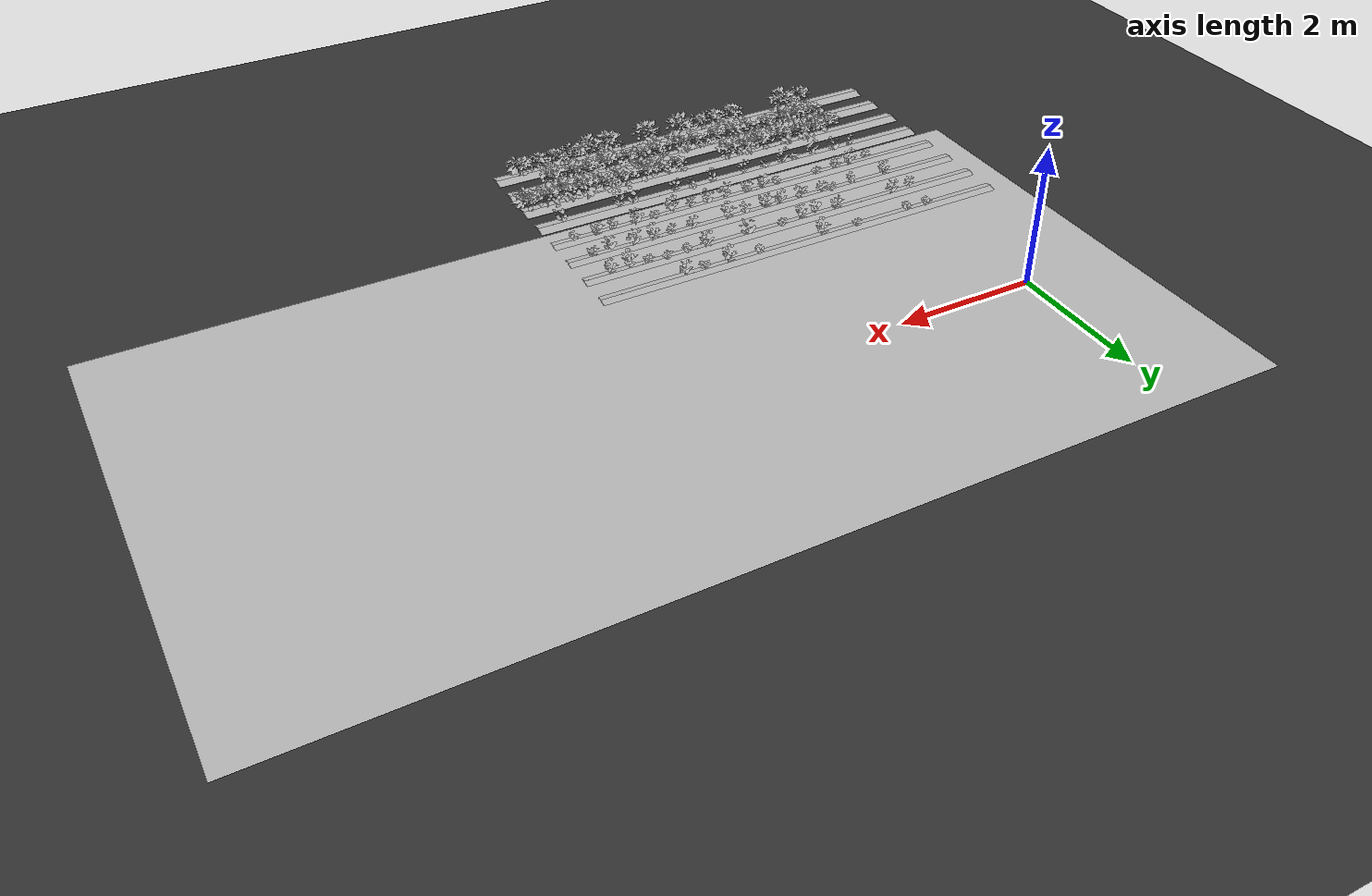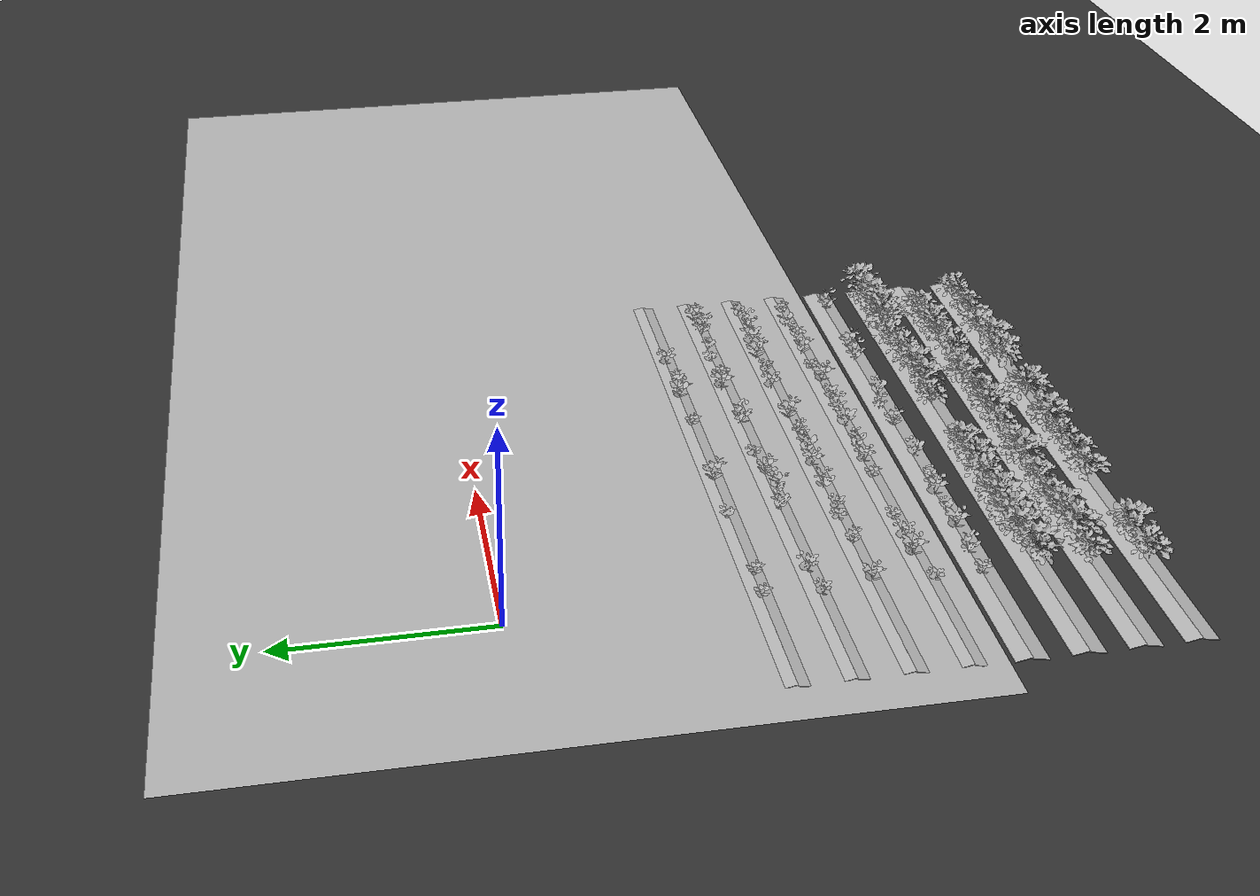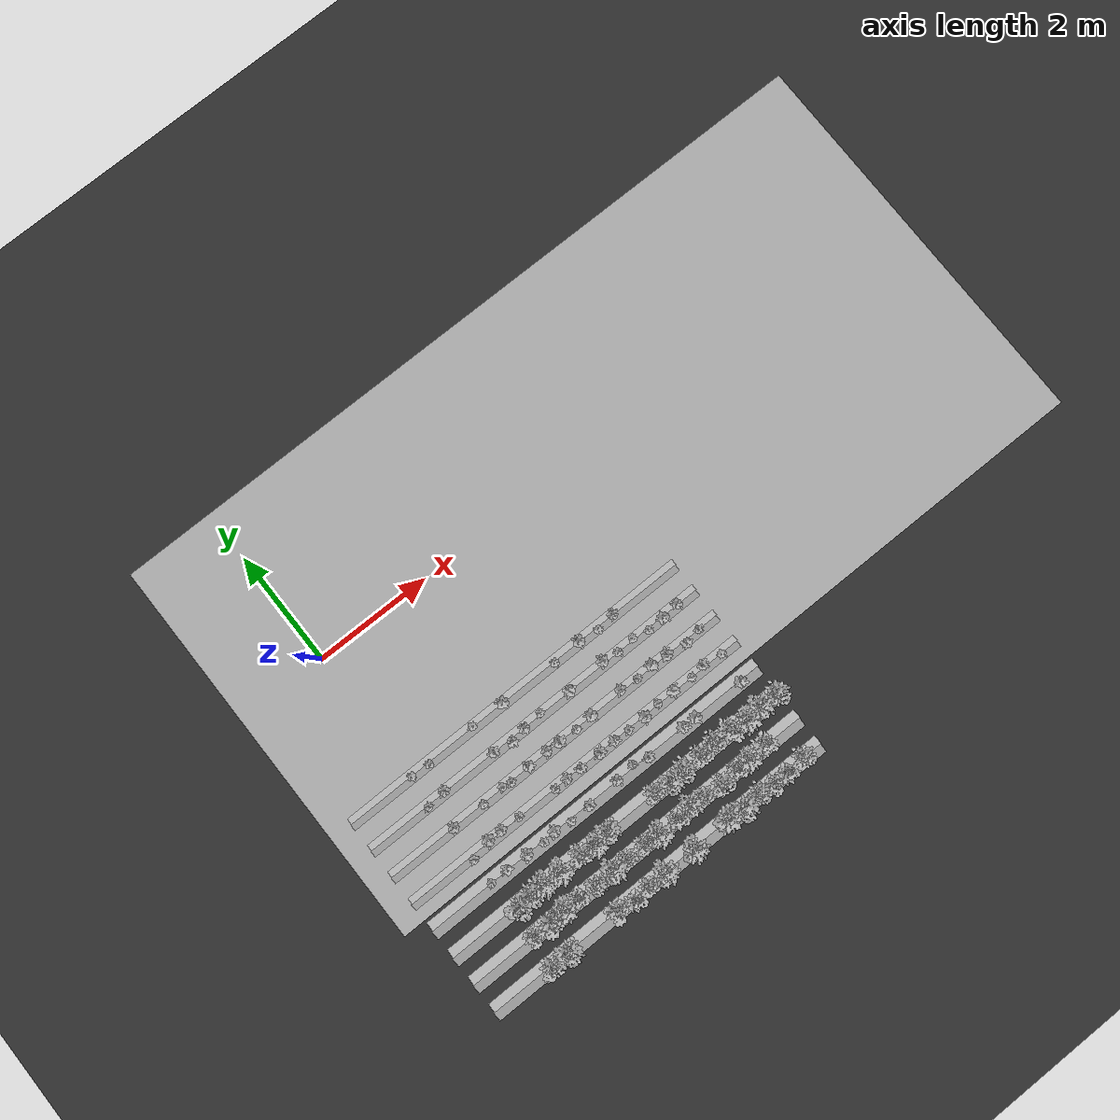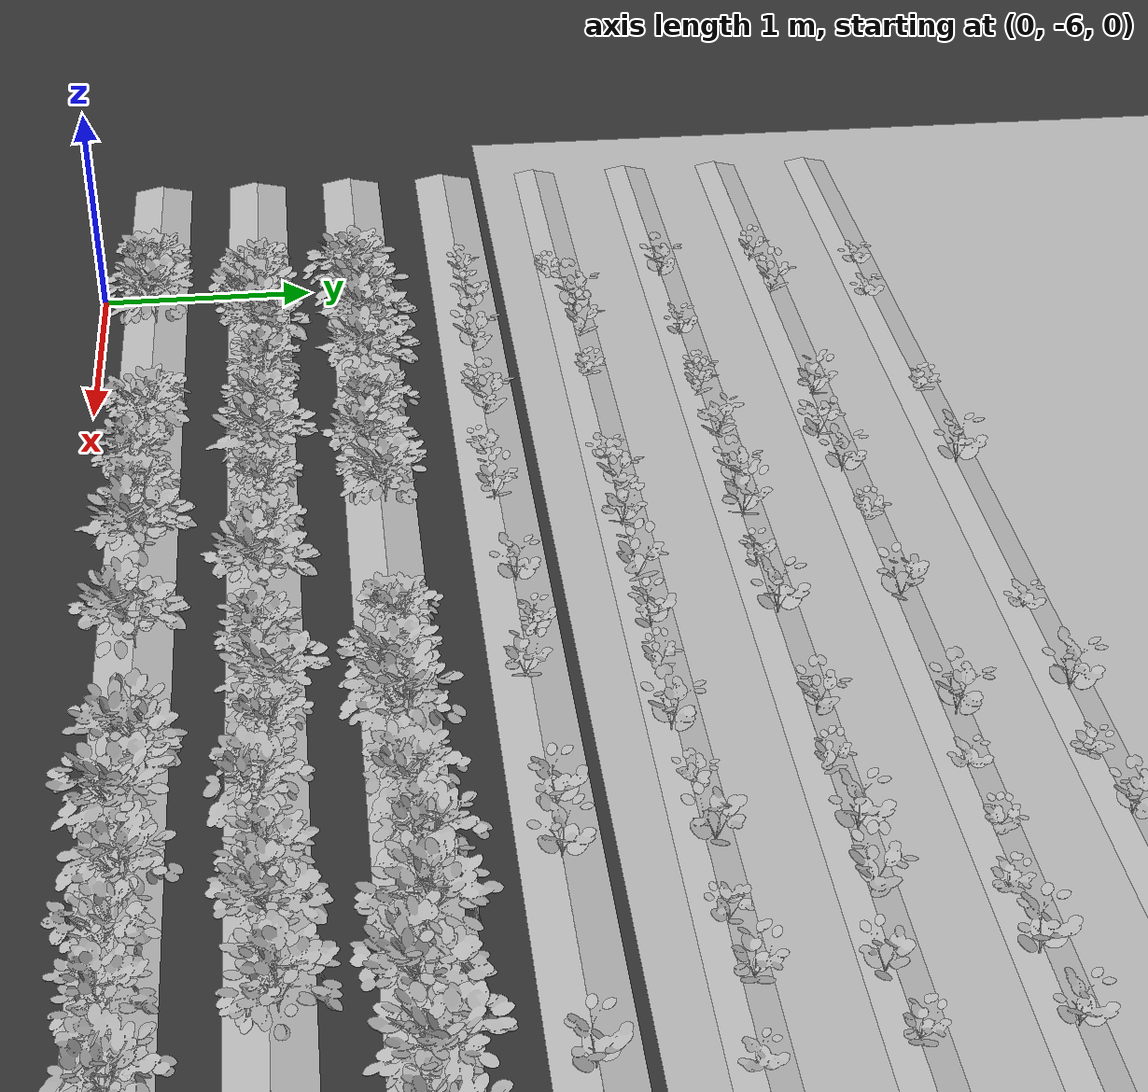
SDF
<sdf version="1.7">
 <world name="default">
  <model name="ground_plane">
   <static>1</static>
   <link name="link">
    <collision name="collision">
     <geometry><plane><normal>0 0 1</normal><size>100 100</size></plane></geometry>
     <surface>
      <contact><collide_bitmask>65535</collide_bitmask></contact>
      <friction><ode><mu>100</mu><mu2>50</mu2></ode></friction>
     </surface>
    </collision>
    <visual name="visual">
     <cast_shadows>0</cast_shadows>
     <geometry><plane><normal>0 0 1</normal><size>100 100</size></plane></geometry>
     <material>
      <ambient>0.2 0.2 0.2 1.0</ambient>
      <diffuse>0.2 0.2 0.2 1.0</diffuse>
      <specular>0.2 0.2 0.2 1.0</specular>
      <emissive>0.2 0.2 0.2 1.0</emissive>
     </material>
    </visual>
   </link>
  </model>
  <model name="ground">
   <pose>5 -0.5 0.01  3.141592654 0 0</pose>
   <static>true</static>
   <link name="body">
    <visual name="visual">
     <cast_shadows>0</cast_shadows>
     <geometry>
      <mesh><uri>file:///home/ifcosta/final_ws/src/cnn_line/worlds/models/ground.obj</uri></mesh>
     </geometry>
    </visual>
   </link>
  </model>
  <model name="plt_10000">
   <pose>-0.0155 -4.25 0.0139 0.0 0.0 -0.20527</pose>
   <static>true</static>
   <link name="body">
    <visual name="visual">
     <geometry>
      <mesh><uri>file:///home/ifcosta/final_ws/src/cnn_line/worlds/models/plant11.obj</uri></mesh>
     </geometry>
    </visual>
   </link>
  </model>
  <model name="plt_10001">
   <pose>0.29 -4.23 0.0123 0.0 0.0 1.6509</pose>
   <static>true</static>
   <link name="body">
    <visual name="visual">
     <geometry>
      <mesh><uri>file:///home/ifcosta/final_ws/src/cnn_line/worlds/models/plant12.obj</uri></mesh>
     </geometry>
    </visual>
   </link>
  </model>
  <model name="plt_10002">
   <pose>0.662 -4.25 0.0135 0.0 0.0 -0.071589</pose>
   <static>true</static>
   <link name="body">
    <visual name="visual">
     <geometry>
      <mesh><uri>file:///home/ifcosta/final_ws/src/cnn_line/worlds/models/plant13.obj</uri></mesh>
     </geometry>
    </visual>
   </link>
  </model>
  <model name="plt_10003">
   <pose>0.961 -4.27 0.0196 0.0 0.0 -1.2805</pose>
   <static>true</static>
   <link name="body">
    <visual name="visual">
     <geometry>
      <mesh><uri>file:///home/ifcosta/final_ws/src/cnn_line/worlds/models/plant10.obj</uri></mesh>
     </geometry>
    </visual>
   </link>
  </model>
  <model name="plt_10004">
   <pose>1.19 -4.24 0.012 0.0 0.0 -0.21423</pose>
   <static>true</static>
   <link name="body">
    <visual name="visual">
     <geometry>
      <mesh><uri>file:///home/ifcosta/final_ws/src/cnn_line/worlds/models/plant13.obj</uri></mesh>
     </geometry>
    </visual>
   </link>
  </model>
  <model name="plt_10005">
   <pose>1.48 -4.28 0.0138 0.0 0.0 2.1689</pose>
   <static>true</static>
   <link name="body">
    <visual name="visual">
     <geometry>
      <mesh><uri>file:///home/ifcosta/final_ws/src/cnn_line/worlds/models/plant10.obj</uri></mesh>
     </geometry>
    </visual>
   </link>
  </model>
  <model name="plt_10006">
   <pose>1.84 -4.27 0.0161 0.0 0.0 -0.95736</pose>
   <static>true</static>
   <link name="body">
    <visual name="visual">
     <geometry>
      <mesh><uri>file:///home/ifcosta/final_ws/src/cnn_line/worlds/models/plant12.obj</uri></mesh>
     </geometry>
    </visual>
   </link>
  </model>
  <model name="plt_10008">
   <pose>2.4 -4.24 0.0127 0.0 0.0 0.71833</pose>
   <static>true</static>
   <link name="body">
    <visual name="visual">
     <geometry>
      <mesh><uri>file:///home/ifcosta/final_ws/src/cnn_line/worlds/models/plant12.obj</uri></mesh>
     </geometry>
    </visual>
   </link>
  </model>
  <model name="plt_10009">
   <pose>2.73 -4.2 0.0151 0.0 0.0 1.341</pose>
   <static>true</static>
   <link name="body">
    <visual name="visual">
     <geometry>
      <mesh><uri>file:///home/ifcosta/final_ws/src/cnn_line/worlds/models/plant11.obj</uri></mesh>
     </geometry>
    </visual>
   </link>
  </model>
  <model name="plt_10010">
   <pose>2.98 -4.27 0.0139 0.0 0.0 -1.2602</pose>
   <static>true</static>
   <link name="body">
    <visual name="visual">
     <geometry>
      <mesh><uri>file:///home/ifcosta/final_ws/src/cnn_line/worlds/models/plant12.obj</uri></mesh>
     </geometry>
    </visual>
   </link>
  </model>
  <model name="plt_10012">
   <pose>3.68 -4.24 0.0168 0.0 0.0 1.4368</pose>
   <static>true</static>
   <link name="body">
    <visual name="visual">
     <geometry>
      <mesh><uri>file:///home/ifcosta/final_ws/src/cnn_line/worlds/models/plant13.obj</uri></mesh>
     </geometry>
    </visual>
   </link>
  </model>
  <model name="plt_10013">
   <pose>3.91 -4.25 0.0149 0.0 0.0 0.73426</pose>
   <static>true</static>
   <link name="body">
    <visual name="visual">
     <geometry>
      <mesh><uri>file:///home/ifcosta/final_ws/src/cnn_line/worlds/models/plant13.obj</uri></mesh>
     </geometry>
    </visual>
   </link>
  </model>
  <model name="plt_10016">
   <pose>4.79 -4.26 0.0151 0.0 0.0 1.4062</pose>
   <static>true</static>
   <link name="body">
    <visual name="visual">
     <geometry>
      <mesh><uri>file:///home/ifcosta/final_ws/src/cnn_line/worlds/models/plant13.obj</uri></mesh>
     </geometry>
    </visual>
   </link>
  </model>
  <model name="slope_634">
   <pose>2.0 -4.25 -0.005 0.0 0.0 0.0</pose>
   <static>true</static>
   <link name="body">
    <visual name="visual">
     <geometry>
      <mesh><uri>file:///home/ifcosta/final_ws/src/cnn_line/worlds/models/slope.obj</uri></mesh>
     </geometry>
    </visual>
   </link>
  </model>
  <model name="slope_734">
   <pose>2.0 -4.25 -0.005 0.0 0.0 3.1416</pose>
   <static>true</static>
   <link name="body">
    <visual name="visual">
     <geometry>
      <mesh><uri>file:///home/ifcosta/final_ws/src/cnn_line/worlds/models/slope.obj</uri></mesh>
     </geometry>
    </visual>
   </link>
  </model>
  <model name="plt_10034">
   <pose>-0.0142 -3.82 0.0136 0.0 0.0 -0.42217</pose>
   <static>true</static>
   <link name="body">
    <visual name="visual">
     <geometry>
      <mesh><uri>file:///home/ifcosta/final_ws/src/cnn_line/worlds/models/plant10.obj</uri></mesh>
     </geometry>
    </visual>
   </link>
  </model>
  <model name="plt_10035">
   <pose>0.339 -3.73 0.0136 0.0 0.0 0.068219</pose>
   <static>true</static>
   <link name="body">
    <visual name="visual">
     <geometry>
      <mesh><uri>file:///home/ifcosta/final_ws/src/cnn_line/worlds/models/plant13.obj</uri></mesh>
     </geometry>
    </visual>
   </link>
  </model>
  <model name="plt_10036">
   <pose>0.577 -3.73 0.0141 0.0 0.0 -0.56082</pose>
   <static>true</static>
   <link name="body">
    <visual name="visual">
     <geometry>
      <mesh><uri>file:///home/ifcosta/final_ws/src/cnn_line/worlds/models/plant12.obj</uri></mesh>
     </geometry>
    </visual>
   </link>
  </model>
  <model name="plt_10037">
   <pose>0.902 -3.74 0.0154 0.0 0.0 -0.92033</pose>
   <static>true</static>
   <link name="body">
    <visual name="visual">
     <geometry>
      <mesh><uri>file:///home/ifcosta/final_ws/src/cnn_line/worlds/models/plant10.obj</uri></mesh>
     </geometry>
    </visual>
   </link>
  </model>
  <model name="plt_10039">
   <pose>1.59 -3.76 0.0153 0.0 0.0 0.54564</pose>
   <static>true</static>
   <link name="body">
    <visual name="visual">
     <geometry>
      <mesh><uri>file:///home/ifcosta/final_ws/src/cnn_line/worlds/models/plant10.obj</uri></mesh>
     </geometry>
    </visual>
   </link>
  </model>
  <model name="plt_10040">
   <pose>1.82 -3.75 0.0142 0.0 0.0 -0.19202</pose>
   <static>true</static>
   <link name="body">
    <visual name="visual">
     <geometry>
      <mesh><uri>file:///home/ifcosta/final_ws/src/cnn_line/worlds/models/plant12.obj</uri></mesh>
     </geometry>
    </visual>
   </link>
  </model>
  <model name="plt_10041">
   <pose>2.08 -3.76 0.0162 0.0 0.0 -1.6055</pose>
   <static>true</static>
   <link name="body">
    <visual name="visual">
     <geometry>
      <mesh><uri>file:///home/ifcosta/final_ws/src/cnn_line/worlds/models/plant12.obj</uri></mesh>
     </geometry>
    </visual>
   </link>
  </model>
  <model name="plt_10042">
   <pose>2.45 -3.76 0.0149 0.0 0.0 -0.82227</pose>
   <static>true</static>
   <link name="body">
    <visual name="visual">
     <geometry>
      <mesh><uri>file:///home/ifcosta/final_ws/src/cnn_line/worlds/models/plant13.obj</uri></mesh>
     </geometry>
    </visual>
   </link>
  </model>
  <model name="plt_10043">
   <pose>2.74 -3.75 0.0141 0.0 0.0 1.4664</pose>
   <static>true</static>
   <link name="body">
    <visual name="visual">
     <geometry>
      <mesh><uri>file:///home/ifcosta/final_ws/src/cnn_line/worlds/models/plant12.obj</uri></mesh>
     </geometry>
    </visual>
   </link>
  </model>
  <model name="plt_10044">
   <pose>3.0 -3.77 0.0157 0.0 0.0 -0.57477</pose>
   <static>true</static>
   <link name="body">
    <visual name="visual">
     <geometry>
      <mesh><uri>file:///home/ifcosta/final_ws/src/cnn_line/worlds/models/plant11.obj</uri></mesh>
     </geometry>
    </visual>
   </link>
  </model>
  <model name="plt_10045">
   <pose>3.32 -3.77 0.0137 0.0 0.0 0.14079</pose>
   <static>true</static>
   <link name="body">
    <visual name="visual">
     <geometry>
      <mesh><uri>file:///home/ifcosta/final_ws/src/cnn_line/worlds/models/plant13.obj</uri></mesh>
     </geometry>
    </visual>
   </link>
  </model>
  <model name="plt_10046">
   <pose>3.6 -3.74 0.0158 0.0 0.0 0.02985</pose>
   <static>true</static>
   <link name="body">
    <visual name="visual">
     <geometry>
      <mesh><uri>file:///home/ifcosta/final_ws/src/cnn_line/worlds/models/plant10.obj</uri></mesh>
     </geometry>
    </visual>
   </link>
  </model>
  <model name="plt_10047">
   <pose>3.9 -3.72 0.0159 0.0 0.0 2.5981</pose>
   <static>true</static>
   <link name="body">
    <visual name="visual">
     <geometry>
      <mesh><uri>file:///home/ifcosta/final_ws/src/cnn_line/worlds/models/plant13.obj</uri></mesh>
     </geometry>
    </visual>
   </link>
  </model>
  <model name="plt_10048">
   <pose>4.25 -3.74 0.0164 0.0 0.0 -3.3697</pose>
   <static>true</static>
   <link name="body">
    <visual name="visual">
     <geometry>
      <mesh><uri>file:///home/ifcosta/final_ws/src/cnn_line/worlds/models/plant11.obj</uri></mesh>
     </geometry>
    </visual>
   </link>
  </model>
  <model name="plt_10049">
   <pose>4.5 -3.71 0.014 0.0 0.0 -1.2945</pose>
   <static>true</static>
   <link name="body">
    <visual name="visual">
     <geometry>
      <mesh><uri>file:///home/ifcosta/final_ws/src/cnn_line/worlds/models/plant12.obj</uri></mesh>
     </geometry>
    </visual>
   </link>
  </model>
  <model name="plt_10050">
   <pose>4.84 -3.76 0.0147 0.0 0.0 1.0075</pose>
   <static>true</static>
   <link name="body">
    <visual name="visual">
     <geometry>
      <mesh><uri>file:///home/ifcosta/final_ws/src/cnn_line/worlds/models/plant10.obj</uri></mesh>
     </geometry>
    </visual>
   </link>
  </model>
  <model name="slope_668">
   <pose>2.0 -3.75 -0.005 0.0 0.0 0.0</pose>
   <static>true</static>
   <link name="body">
    <visual name="visual">
     <geometry>
      <mesh><uri>file:///home/ifcosta/final_ws/src/cnn_line/worlds/models/slope.obj</uri></mesh>
     </geometry>
    </visual>
   </link>
  </model>
  <model name="slope_768">
   <pose>2.0 -3.75 -0.005 0.0 0.0 3.1416</pose>
   <static>true</static>
   <link name="body">
    <visual name="visual">
     <geometry>
      <mesh><uri>file:///home/ifcosta/final_ws/src/cnn_line/worlds/models/slope.obj</uri></mesh>
     </geometry>
    </visual>
   </link>
  </model>
  <model name="plt_10068">
   <pose>0.0498 -3.26 0.0142 0.0 0.0 0.10917</pose>
   <static>true</static>
   <link name="body">
    <visual name="visual">
     <geometry>
      <mesh><uri>file:///home/ifcosta/final_ws/src/cnn_line/worlds/models/plant12.obj</uri></mesh>
     </geometry>
    </visual>
   </link>
  </model>
  <model name="plt_10070">
   <pose>0.612 -3.26 0.0137 0.0 0.0 0.96108</pose>
   <static>true</static>
   <link name="body">
    <visual name="visual">
     <geometry>
      <mesh><uri>file:///home/ifcosta/final_ws/src/cnn_line/worlds/models/plant11.obj</uri></mesh>
     </geometry>
    </visual>
   </link>
  </model>
  <model name="plt_10071">
   <pose>0.981 -3.24 0.0156 0.0 0.0 -0.22432</pose>
   <static>true</static>
   <link name="body">
    <visual name="visual">
     <geometry>
      <mesh><uri>file:///home/ifcosta/final_ws/src/cnn_line/worlds/models/plant10.obj</uri></mesh>
     </geometry>
    </visual>
   </link>
  </model>
  <model name="plt_10072">
   <pose>1.13 -3.27 0.0126 0.0 0.0 -0.60124</pose>
   <static>true</static>
   <link name="body">
    <visual name="visual">
     <geometry>
      <mesh><uri>file:///home/ifcosta/final_ws/src/cnn_line/worlds/models/plant11.obj</uri></mesh>
     </geometry>
    </visual>
   </link>
  </model>
  <model name="plt_10073">
   <pose>1.48 -3.24 0.0167 0.0 0.0 -2.2975</pose>
   <static>true</static>
   <link name="body">
    <visual name="visual">
     <geometry>
      <mesh><uri>file:///home/ifcosta/final_ws/src/cnn_line/worlds/models/plant12.obj</uri></mesh>
     </geometry>
    </visual>
   </link>
  </model>
  <model name="plt_10074">
   <pose>1.84 -3.24 0.0138 0.0 0.0 -0.044385</pose>
   <static>true</static>
   <link name="body">
    <visual name="visual">
     <geometry>
      <mesh><uri>file:///home/ifcosta/final_ws/src/cnn_line/worlds/models/plant12.obj</uri></mesh>
     </geometry>
    </visual>
   </link>
  </model>
  <model name="plt_10075">
   <pose>2.07 -3.25 0.0153 0.0 0.0 -1.4695</pose>
   <static>true</static>
   <link name="body">
    <visual name="visual">
     <geometry>
      <mesh><uri>file:///home/ifcosta/final_ws/src/cnn_line/worlds/models/plant13.obj</uri></mesh>
     </geometry>
    </visual>
   </link>
  </model>
  <model name="plt_10076">
   <pose>2.4 -3.26 0.0146 0.0 0.0 1.5459</pose>
   <static>true</static>
   <link name="body">
    <visual name="visual">
     <geometry>
      <mesh><uri>file:///home/ifcosta/final_ws/src/cnn_line/worlds/models/plant11.obj</uri></mesh>
     </geometry>
    </visual>
   </link>
  </model>
  <model name="plt_10077">
   <pose>2.7 -3.24 0.0145 0.0 0.0 0.80367</pose>
   <static>true</static>
   <link name="body">
    <visual name="visual">
     <geometry>
      <mesh><uri>file:///home/ifcosta/final_ws/src/cnn_line/worlds/models/plant13.obj</uri></mesh>
     </geometry>
    </visual>
   </link>
  </model>
  <model name="plt_10079">
   <pose>3.28 -3.22 0.0128 0.0 0.0 -0.28753</pose>
   <static>true</static>
   <link name="body">
    <visual name="visual">
     <geometry>
      <mesh><uri>file:///home/ifcosta/final_ws/src/cnn_line/worlds/models/plant12.obj</uri></mesh>
     </geometry>
    </visual>
   </link>
  </model>
  <model name="plt_10080">
   <pose>3.59 -3.25 0.0123 0.0 0.0 -0.81156</pose>
   <static>true</static>
   <link name="body">
    <visual name="visual">
     <geometry>
      <mesh><uri>file:///home/ifcosta/final_ws/src/cnn_line/worlds/models/plant11.obj</uri></mesh>
     </geometry>
    </visual>
   </link>
  </model>
  <model name="plt_10081">
   <pose>3.89 -3.22 0.0166 0.0 0.0 0.79821</pose>
   <static>true</static>
   <link name="body">
    <visual name="visual">
     <geometry>
      <mesh><uri>file:///home/ifcosta/final_ws/src/cnn_line/worlds/models/plant13.obj</uri></mesh>
     </geometry>
    </visual>
   </link>
  </model>
  <model name="plt_10082">
   <pose>4.17 -3.24 0.0134 0.0 0.0 -0.51475</pose>
   <static>true</static>
   <link name="body">
    <visual name="visual">
     <geometry>
      <mesh><uri>file:///home/ifcosta/final_ws/src/cnn_line/worlds/models/plant13.obj</uri></mesh>
     </geometry>
    </visual>
   </link>
  </model>
  <model name="plt_10083">
   <pose>4.52 -3.29 0.014 0.0 0.0 2.0841</pose>
   <static>true</static>
   <link name="body">
    <visual name="visual">
     <geometry>
      <mesh><uri>file:///home/ifcosta/final_ws/src/cnn_line/worlds/models/plant12.obj</uri></mesh>
     </geometry>
    </visual>
   </link>
  </model>
  <model name="plt_10084">
   <pose>4.79 -3.25 0.0162 0.0 0.0 -1.3864</pose>
   <static>true</static>
   <link name="body">
    <visual name="visual">
     <geometry>
      <mesh><uri>file:///home/ifcosta/final_ws/src/cnn_line/worlds/models/plant11.obj</uri></mesh>
     </geometry>
    </visual>
   </link>
  </model>
  <model name="slope_702">
   <pose>2.0 -3.25 -0.005 0.0 0.0 0.0</pose>
   <static>true</static>
   <link name="body">
    <visual name="visual">
     <geometry>
      <mesh><uri>file:///home/ifcosta/final_ws/src/cnn_line/worlds/models/slope.obj</uri></mesh>
     </geometry>
    </visual>
   </link>
  </model>
  <model name="slope_802">
   <pose>2.0 -3.25 -0.005 0.0 0.0 3.1416</pose>
   <static>true</static>
   <link name="body">
    <visual name="visual">
     <geometry>
      <mesh><uri>file:///home/ifcosta/final_ws/src/cnn_line/worlds/models/slope.obj</uri></mesh>
     </geometry>
    </visual>
   </link>
  </model>
  <model name="plt_10102">
   <pose>-0.0664 -2.78 0.0167 0.0 0.0 -0.61444</pose>
   <static>true</static>
   <link name="body">
    <visual name="visual">
     <geometry>
      <mesh><uri>file:///home/ifcosta/final_ws/src/cnn_line/worlds/models/plant11.obj</uri></mesh>
     </geometry>
    </visual>
   </link>
  </model>
  <model name="plt_20102">
   <pose>-0.0664 -5.78 0.0167 0.0 0.0 0.69215</pose>
   <static>true</static>
   <link name="body">
    <visual name="visual">
     <geometry>
      <mesh><uri>file:///home/ifcosta/final_ws/src/cnn_line/worlds/models/plant21.obj</uri></mesh>
     </geometry>
    </visual>
   </link>
  </model>
  <model name="plt_10103">
   <pose>0.262 -2.74 0.0141 0.0 0.0 -0.56469</pose>
   <static>true</static>
   <link name="body">
    <visual name="visual">
     <geometry>
      <mesh><uri>file:///home/ifcosta/final_ws/src/cnn_line/worlds/models/plant12.obj</uri></mesh>
     </geometry>
    </visual>
   </link>
  </model>
  <model name="plt_20103">
   <pose>0.262 -5.74 0.0141 0.0 0.0 0.14658</pose>
   <static>true</static>
   <link name="body">
    <visual name="visual">
     <geometry>
      <mesh><uri>file:///home/ifcosta/final_ws/src/cnn_line/worlds/models/plant22.obj</uri></mesh>
     </geometry>
    </visual>
   </link>
  </model>
  <model name="plt_10106">
   <pose>1.2 -2.75 0.0172 0.0 0.0 -1.3904</pose>
   <static>true</static>
   <link name="body">
    <visual name="visual">
     <geometry>
      <mesh><uri>file:///home/ifcosta/final_ws/src/cnn_line/worlds/models/plant12.obj</uri></mesh>
     </geometry>
    </visual>
   </link>
  </model>
  <model name="plt_20106">
   <pose>1.2 -5.75 0.0172 0.0 0.0 1.2882</pose>
   <static>true</static>
   <link name="body">
    <visual name="visual">
     <geometry>
      <mesh><uri>file:///home/ifcosta/final_ws/src/cnn_line/worlds/models/plant21.obj</uri></mesh>
     </geometry>
    </visual>
   </link>
  </model>
  <model name="plt_10107">
   <pose>1.52 -2.8 0.0153 0.0 0.0 3.1472</pose>
   <static>true</static>
   <link name="body">
    <visual name="visual">
     <geometry>
      <mesh><uri>file:///home/ifcosta/final_ws/src/cnn_line/worlds/models/plant12.obj</uri></mesh>
     </geometry>
    </visual>
   </link>
  </model>
  <model name="plt_20107">
   <pose>1.52 -5.8 0.0153 0.0 0.0 1.6984</pose>
   <static>true</static>
   <link name="body">
    <visual name="visual">
     <geometry>
      <mesh><uri>file:///home/ifcosta/final_ws/src/cnn_line/worlds/models/plant20.obj</uri></mesh>
     </geometry>
    </visual>
   </link>
  </model>
  <model name="plt_10108">
   <pose>1.79 -2.76 0.0176 0.0 0.0 0.48622</pose>
   <static>true</static>
   <link name="body">
    <visual name="visual">
     <geometry>
      <mesh><uri>file:///home/ifcosta/final_ws/src/cnn_line/worlds/models/plant12.obj</uri></mesh>
     </geometry>
    </visual>
   </link>
  </model>
  <model name="plt_20108">
   <pose>1.79 -5.76 0.0176 0.0 0.0 -0.096183</pose>
   <static>true</static>
   <link name="body">
    <visual name="visual">
     <geometry>
      <mesh><uri>file:///home/ifcosta/final_ws/src/cnn_line/worlds/models/plant20.obj</uri></mesh>
     </geometry>
    </visual>
   </link>
  </model>
  <model name="plt_10109">
   <pose>2.11 -2.73 0.0164 0.0 0.0 -0.62056</pose>
   <static>true</static>
   <link name="body">
    <visual name="visual">
     <geometry>
      <mesh><uri>file:///home/ifcosta/final_ws/src/cnn_line/worlds/models/plant10.obj</uri></mesh>
     </geometry>
    </visual>
   </link>
  </model>
  <model name="plt_20109">
   <pose>2.11 -5.73 0.0164 0.0 0.0 -0.61001</pose>
   <static>true</static>
   <link name="body">
    <visual name="visual">
     <geometry>
      <mesh><uri>file:///home/ifcosta/final_ws/src/cnn_line/worlds/models/plant22.obj</uri></mesh>
     </geometry>
    </visual>
   </link>
  </model>
  <model name="plt_10111">
   <pose>2.67 -2.74 0.014 0.0 0.0 2.0661</pose>
   <static>true</static>
   <link name="body">
    <visual name="visual">
     <geometry>
      <mesh><uri>file:///home/ifcosta/final_ws/src/cnn_line/worlds/models/plant13.obj</uri></mesh>
     </geometry>
    </visual>
   </link>
  </model>
  <model name="plt_20111">
   <pose>2.67 -5.74 0.014 0.0 0.0 -0.96624</pose>
   <static>true</static>
   <link name="body">
    <visual name="visual">
     <geometry>
      <mesh><uri>file:///home/ifcosta/final_ws/src/cnn_line/worlds/models/plant22.obj</uri></mesh>
     </geometry>
    </visual>
   </link>
  </model>
  <model name="plt_10113">
   <pose>3.34 -2.71 0.0191 0.0 0.0 -0.024275</pose>
   <static>true</static>
   <link name="body">
    <visual name="visual">
     <geometry>
      <mesh><uri>file:///home/ifcosta/final_ws/src/cnn_line/worlds/models/plant13.obj</uri></mesh>
     </geometry>
    </visual>
   </link>
  </model>
  <model name="plt_20113">
   <pose>3.34 -5.71 0.0191 0.0 0.0 -1.4681</pose>
   <static>true</static>
   <link name="body">
    <visual name="visual">
     <geometry>
      <mesh><uri>file:///home/ifcosta/final_ws/src/cnn_line/worlds/models/plant22.obj</uri></mesh>
     </geometry>
    </visual>
   </link>
  </model>
  <model name="plt_10114">
   <pose>3.62 -2.75 0.0179 0.0 0.0 0.75941</pose>
   <static>true</static>
   <link name="body">
    <visual name="visual">
     <geometry>
      <mesh><uri>file:///home/ifcosta/final_ws/src/cnn_line/worlds/models/plant10.obj</uri></mesh>
     </geometry>
    </visual>
   </link>
  </model>
  <model name="plt_20114">
   <pose>3.62 -5.75 0.0179 0.0 0.0 0.054323</pose>
   <static>true</static>
   <link name="body">
    <visual name="visual">
     <geometry>
      <mesh><uri>file:///home/ifcosta/final_ws/src/cnn_line/worlds/models/plant22.obj</uri></mesh>
     </geometry>
    </visual>
   </link>
  </model>
  <model name="plt_10115">
   <pose>3.92 -2.73 0.0164 0.0 0.0 -0.74272</pose>
   <static>true</static>
   <link name="body">
    <visual name="visual">
     <geometry>
      <mesh><uri>file:///home/ifcosta/final_ws/src/cnn_line/worlds/models/plant10.obj</uri></mesh>
     </geometry>
    </visual>
   </link>
  </model>
  <model name="plt_20115">
   <pose>3.92 -5.73 0.0164 0.0 0.0 0.088671</pose>
   <static>true</static>
   <link name="body">
    <visual name="visual">
     <geometry>
      <mesh><uri>file:///home/ifcosta/final_ws/src/cnn_line/worlds/models/plant21.obj</uri></mesh>
     </geometry>
    </visual>
   </link>
  </model>
  <model name="plt_10116">
   <pose>4.19 -2.78 0.0137 0.0 0.0 -1.3944</pose>
   <static>true</static>
   <link name="body">
    <visual name="visual">
     <geometry>
      <mesh><uri>file:///home/ifcosta/final_ws/src/cnn_line/worlds/models/plant10.obj</uri></mesh>
     </geometry>
    </visual>
   </link>
  </model>
  <model name="plt_20116">
   <pose>4.19 -5.78 0.0137 0.0 0.0 0.858</pose>
   <static>true</static>
   <link name="body">
    <visual name="visual">
     <geometry>
      <mesh><uri>file:///home/ifcosta/final_ws/src/cnn_line/worlds/models/plant20.obj</uri></mesh>
     </geometry>
    </visual>
   </link>
  </model>
  <model name="plt_10117">
   <pose>4.48 -2.77 0.0169 0.0 0.0 1.0625</pose>
   <static>true</static>
   <link name="body">
    <visual name="visual">
     <geometry>
      <mesh><uri>file:///home/ifcosta/final_ws/src/cnn_line/worlds/models/plant13.obj</uri></mesh>
     </geometry>
    </visual>
   </link>
  </model>
  <model name="plt_20117">
   <pose>4.48 -5.77 0.0169 0.0 0.0 1.9713</pose>
   <static>true</static>
   <link name="body">
    <visual name="visual">
     <geometry>
      <mesh><uri>file:///home/ifcosta/final_ws/src/cnn_line/worlds/models/plant20.obj</uri></mesh>
     </geometry>
    </visual>
   </link>
  </model>
  <model name="plt_10118">
   <pose>4.78 -2.74 0.0152 0.0 0.0 0.69668</pose>
   <static>true</static>
   <link name="body">
    <visual name="visual">
     <geometry>
      <mesh><uri>file:///home/ifcosta/final_ws/src/cnn_line/worlds/models/plant12.obj</uri></mesh>
     </geometry>
    </visual>
   </link>
  </model>
  <model name="plt_20118">
   <pose>4.78 -5.74 0.0152 0.0 0.0 0.5259</pose>
   <static>true</static>
   <link name="body">
    <visual name="visual">
     <geometry>
      <mesh><uri>file:///home/ifcosta/final_ws/src/cnn_line/worlds/models/plant21.obj</uri></mesh>
     </geometry>
    </visual>
   </link>
  </model>
  <model name="slope_736">
   <pose>2.0 -2.75 -0.005 0.0 0.0 0.0</pose>
   <static>true</static>
   <link name="body">
    <visual name="visual">
     <geometry>
      <mesh><uri>file:///home/ifcosta/final_ws/src/cnn_line/worlds/models/slope.obj</uri></mesh>
     </geometry>
    </visual>
   </link>
  </model>
  <model name="slope_836">
   <pose>2.0 -2.75 -0.005 0.0 0.0 3.1416</pose>
   <static>true</static>
   <link name="body">
    <visual name="visual">
     <geometry>
      <mesh><uri>file:///home/ifcosta/final_ws/src/cnn_line/worlds/models/slope.obj</uri></mesh>
     </geometry>
    </visual>
   </link>
  </model>
  <model name="slope_1136">
   <pose>2.0 -5.75 -0.005 0.0 0.0 0.0</pose>
   <static>true</static>
   <link name="body">
    <visual name="visual">
     <geometry>
      <mesh><uri>file:///home/ifcosta/final_ws/src/cnn_line/worlds/models/slope.obj</uri></mesh>
     </geometry>
    </visual>
   </link>
  </model>
  <model name="slope_1236">
   <pose>2.0 -5.75 -0.005 0.0 0.0 3.1416</pose>
   <static>true</static>
   <link name="body">
    <visual name="visual">
     <geometry>
      <mesh><uri>file:///home/ifcosta/final_ws/src/cnn_line/worlds/models/slope.obj</uri></mesh>
     </geometry>
    </visual>
   </link>
  </model>
  <model name="plt_10136">
   <pose>0.0107 -2.26 0.0145 0.0 0.0 0.56906</pose>
   <static>true</static>
   <link name="body">
    <visual name="visual">
     <geometry>
      <mesh><uri>file:///home/ifcosta/final_ws/src/cnn_line/worlds/models/plant10.obj</uri></mesh>
     </geometry>
    </visual>
   </link>
  </model>
  <model name="plt_20136">
   <pose>0.0107 -5.26 0.0145 0.0 0.0 0.55947</pose>
   <static>true</static>
   <link name="body">
    <visual name="visual">
     <geometry>
      <mesh><uri>file:///home/ifcosta/final_ws/src/cnn_line/worlds/models/plant20.obj</uri></mesh>
     </geometry>
    </visual>
   </link>
  </model>
  <model name="plt_10137">
   <pose>0.332 -2.28 0.0125 0.0 0.0 0.71131</pose>
   <static>true</static>
   <link name="body">
    <visual name="visual">
     <geometry>
      <mesh><uri>file:///home/ifcosta/final_ws/src/cnn_line/worlds/models/plant10.obj</uri></mesh>
     </geometry>
    </visual>
   </link>
  </model>
  <model name="plt_20137">
   <pose>0.332 -5.28 0.0125 0.0 0.0 1.6973</pose>
   <static>true</static>
   <link name="body">
    <visual name="visual">
     <geometry>
      <mesh><uri>file:///home/ifcosta/final_ws/src/cnn_line/worlds/models/plant22.obj</uri></mesh>
     </geometry>
    </visual>
   </link>
  </model>
  <model name="plt_20138">
   <pose>0.586 -5.21 0.0165 0.0 0.0 -1.2315</pose>
   <static>true</static>
   <link name="body">
    <visual name="visual">
     <geometry>
      <mesh><uri>file:///home/ifcosta/final_ws/src/cnn_line/worlds/models/plant22.obj</uri></mesh>
     </geometry>
    </visual>
   </link>
  </model>
  <model name="plt_20139">
   <pose>0.865 -5.23 0.0166 0.0 0.0 1.6373</pose>
   <static>true</static>
   <link name="body">
    <visual name="visual">
     <geometry>
      <mesh><uri>file:///home/ifcosta/final_ws/src/cnn_line/worlds/models/plant20.obj</uri></mesh>
     </geometry>
    </visual>
   </link>
  </model>
  <model name="plt_10140">
   <pose>1.18 -2.24 0.0134 0.0 0.0 -1.0354</pose>
   <static>true</static>
   <link name="body">
    <visual name="visual">
     <geometry>
      <mesh><uri>file:///home/ifcosta/final_ws/src/cnn_line/worlds/models/plant10.obj</uri></mesh>
     </geometry>
    </visual>
   </link>
  </model>
  <model name="plt_20140">
   <pose>1.18 -5.24 0.0134 0.0 0.0 -1.5045</pose>
   <static>true</static>
   <link name="body">
    <visual name="visual">
     <geometry>
      <mesh><uri>file:///home/ifcosta/final_ws/src/cnn_line/worlds/models/plant20.obj</uri></mesh>
     </geometry>
    </visual>
   </link>
  </model>
  <model name="plt_20141">
   <pose>1.53 -5.22 0.0144 0.0 0.0 -0.38632</pose>
   <static>true</static>
   <link name="body">
    <visual name="visual">
     <geometry>
      <mesh><uri>file:///home/ifcosta/final_ws/src/cnn_line/worlds/models/plant22.obj</uri></mesh>
     </geometry>
    </visual>
   </link>
  </model>
  <model name="plt_10142">
   <pose>1.77 -2.25 0.0133 0.0 0.0 0.74535</pose>
   <static>true</static>
   <link name="body">
    <visual name="visual">
     <geometry>
      <mesh><uri>file:///home/ifcosta/final_ws/src/cnn_line/worlds/models/plant13.obj</uri></mesh>
     </geometry>
    </visual>
   </link>
  </model>
  <model name="plt_20142">
   <pose>1.77 -5.25 0.0133 0.0 0.0 -0.075292</pose>
   <static>true</static>
   <link name="body">
    <visual name="visual">
     <geometry>
      <mesh><uri>file:///home/ifcosta/final_ws/src/cnn_line/worlds/models/plant20.obj</uri></mesh>
     </geometry>
    </visual>
   </link>
  </model>
  <model name="plt_20143">
   <pose>2.12 -5.24 0.0134 0.0 0.0 0.1273</pose>
   <static>true</static>
   <link name="body">
    <visual name="visual">
     <geometry>
      <mesh><uri>file:///home/ifcosta/final_ws/src/cnn_line/worlds/models/plant20.obj</uri></mesh>
     </geometry>
    </visual>
   </link>
  </model>
  <model name="plt_20144">
   <pose>2.4 -5.24 0.0156 0.0 0.0 -0.94204</pose>
   <static>true</static>
   <link name="body">
    <visual name="visual">
     <geometry>
      <mesh><uri>file:///home/ifcosta/final_ws/src/cnn_line/worlds/models/plant22.obj</uri></mesh>
     </geometry>
    </visual>
   </link>
  </model>
  <model name="plt_10145">
   <pose>2.76 -2.27 0.0132 0.0 0.0 0.5945</pose>
   <static>true</static>
   <link name="body">
    <visual name="visual">
     <geometry>
      <mesh><uri>file:///home/ifcosta/final_ws/src/cnn_line/worlds/models/plant10.obj</uri></mesh>
     </geometry>
    </visual>
   </link>
  </model>
  <model name="plt_20145">
   <pose>2.76 -5.27 0.0132 0.0 0.0 1.7118</pose>
   <static>true</static>
   <link name="body">
    <visual name="visual">
     <geometry>
      <mesh><uri>file:///home/ifcosta/final_ws/src/cnn_line/worlds/models/plant20.obj</uri></mesh>
     </geometry>
    </visual>
   </link>
  </model>
  <model name="plt_20146">
   <pose>3.04 -5.2 0.0153 0.0 0.0 -0.95678</pose>
   <static>true</static>
   <link name="body">
    <visual name="visual">
     <geometry>
      <mesh><uri>file:///home/ifcosta/final_ws/src/cnn_line/worlds/models/plant21.obj</uri></mesh>
     </geometry>
    </visual>
   </link>
  </model>
  <model name="plt_10147">
   <pose>3.25 -2.25 0.0127 0.0 0.0 0.38662</pose>
   <static>true</static>
   <link name="body">
    <visual name="visual">
     <geometry>
      <mesh><uri>file:///home/ifcosta/final_ws/src/cnn_line/worlds/models/plant13.obj</uri></mesh>
     </geometry>
    </visual>
   </link>
  </model>
  <model name="plt_20147">
   <pose>3.25 -5.25 0.0127 0.0 0.0 -0.085176</pose>
   <static>true</static>
   <link name="body">
    <visual name="visual">
     <geometry>
      <mesh><uri>file:///home/ifcosta/final_ws/src/cnn_line/worlds/models/plant20.obj</uri></mesh>
     </geometry>
    </visual>
   </link>
  </model>
  <model name="plt_10148">
   <pose>3.59 -2.29 0.0161 0.0 0.0 -1.8513</pose>
   <static>true</static>
   <link name="body">
    <visual name="visual">
     <geometry>
      <mesh><uri>file:///home/ifcosta/final_ws/src/cnn_line/worlds/models/plant10.obj</uri></mesh>
     </geometry>
    </visual>
   </link>
  </model>
  <model name="plt_20148">
   <pose>3.59 -5.29 0.0161 0.0 0.0 0.58428</pose>
   <static>true</static>
   <link name="body">
    <visual name="visual">
     <geometry>
      <mesh><uri>file:///home/ifcosta/final_ws/src/cnn_line/worlds/models/plant21.obj</uri></mesh>
     </geometry>
    </visual>
   </link>
  </model>
  <model name="plt_10149">
   <pose>3.91 -2.25 0.015 0.0 0.0 -0.16029</pose>
   <static>true</static>
   <link name="body">
    <visual name="visual">
     <geometry>
      <mesh><uri>file:///home/ifcosta/final_ws/src/cnn_line/worlds/models/plant12.obj</uri></mesh>
     </geometry>
    </visual>
   </link>
  </model>
  <model name="plt_20149">
   <pose>3.91 -5.25 0.015 0.0 0.0 1.5465</pose>
   <static>true</static>
   <link name="body">
    <visual name="visual">
     <geometry>
      <mesh><uri>file:///home/ifcosta/final_ws/src/cnn_line/worlds/models/plant20.obj</uri></mesh>
     </geometry>
    </visual>
   </link>
  </model>
  <model name="plt_20150">
   <pose>4.14 -5.23 0.0139 0.0 0.0 -1.7553</pose>
   <static>true</static>
   <link name="body">
    <visual name="visual">
     <geometry>
      <mesh><uri>file:///home/ifcosta/final_ws/src/cnn_line/worlds/models/plant21.obj</uri></mesh>
     </geometry>
    </visual>
   </link>
  </model>
  <model name="plt_20151">
   <pose>4.48 -5.22 0.0131 0.0 0.0 2.541</pose>
   <static>true</static>
   <link name="body">
    <visual name="visual">
     <geometry>
      <mesh><uri>file:///home/ifcosta/final_ws/src/cnn_line/worlds/models/plant21.obj</uri></mesh>
     </geometry>
    </visual>
   </link>
  </model>
  <model name="slope_770">
   <pose>2.0 -2.25 -0.005 0.0 0.0 0.0</pose>
   <static>true</static>
   <link name="body">
    <visual name="visual">
     <geometry>
      <mesh><uri>file:///home/ifcosta/final_ws/src/cnn_line/worlds/models/slope.obj</uri></mesh>
     </geometry>
    </visual>
   </link>
  </model>
  <model name="slope_870">
   <pose>2.0 -2.25 -0.005 0.0 0.0 3.1416</pose>
   <static>true</static>
   <link name="body">
    <visual name="visual">
     <geometry>
      <mesh><uri>file:///home/ifcosta/final_ws/src/cnn_line/worlds/models/slope.obj</uri></mesh>
     </geometry>
    </visual>
   </link>
  </model>
  <model name="slope_1170">
   <pose>2.0 -5.25 -0.005 0.0 0.0 0.0</pose>
   <static>true</static>
   <link name="body">
    <visual name="visual">
     <geometry>
      <mesh><uri>file:///home/ifcosta/final_ws/src/cnn_line/worlds/models/slope.obj</uri></mesh>
     </geometry>
    </visual>
   </link>
  </model>
  <model name="slope_1270">
   <pose>2.0 -5.25 -0.005 0.0 0.0 3.1416</pose>
   <static>true</static>
   <link name="body">
    <visual name="visual">
     <geometry>
      <mesh><uri>file:///home/ifcosta/final_ws/src/cnn_line/worlds/models/slope.obj</uri></mesh>
     </geometry>
    </visual>
   </link>
  </model>
  <model name="plt_20170">
   <pose>0.0793 -4.79 0.0149 0.0 0.0 0.47097</pose>
   <static>true</static>
   <link name="body">
    <visual name="visual">
     <geometry>
      <mesh><uri>file:///home/ifcosta/final_ws/src/cnn_line/worlds/models/plant22.obj</uri></mesh>
     </geometry>
    </visual>
   </link>
  </model>
  <model name="plt_20171">
   <pose>0.334 -4.74 0.00981 0.0 0.0 0.44831</pose>
   <static>true</static>
   <link name="body">
    <visual name="visual">
     <geometry>
      <mesh><uri>file:///home/ifcosta/final_ws/src/cnn_line/worlds/models/plant22.obj</uri></mesh>
     </geometry>
    </visual>
   </link>
  </model>
  <model name="plt_20172">
   <pose>0.592 -4.73 0.0162 0.0 0.0 -0.92933</pose>
   <static>true</static>
   <link name="body">
    <visual name="visual">
     <geometry>
      <mesh><uri>file:///home/ifcosta/final_ws/src/cnn_line/worlds/models/plant22.obj</uri></mesh>
     </geometry>
    </visual>
   </link>
  </model>
  <model name="plt_20173">
   <pose>0.897 -4.74 0.0182 0.0 0.0 -0.89326</pose>
   <static>true</static>
   <link name="body">
    <visual name="visual">
     <geometry>
      <mesh><uri>file:///home/ifcosta/final_ws/src/cnn_line/worlds/models/plant22.obj</uri></mesh>
     </geometry>
    </visual>
   </link>
  </model>
  <model name="plt_20174">
   <pose>1.27 -4.76 0.0171 0.0 0.0 0.53725</pose>
   <static>true</static>
   <link name="body">
    <visual name="visual">
     <geometry>
      <mesh><uri>file:///home/ifcosta/final_ws/src/cnn_line/worlds/models/plant21.obj</uri></mesh>
     </geometry>
    </visual>
   </link>
  </model>
  <model name="plt_20175">
   <pose>1.55 -4.77 0.0107 0.0 0.0 -1.6778</pose>
   <static>true</static>
   <link name="body">
    <visual name="visual">
     <geometry>
      <mesh><uri>file:///home/ifcosta/final_ws/src/cnn_line/worlds/models/plant21.obj</uri></mesh>
     </geometry>
    </visual>
   </link>
  </model>
  <model name="plt_20176">
   <pose>1.81 -4.73 0.0169 0.0 0.0 -0.60708</pose>
   <static>true</static>
   <link name="body">
    <visual name="visual">
     <geometry>
      <mesh><uri>file:///home/ifcosta/final_ws/src/cnn_line/worlds/models/plant21.obj</uri></mesh>
     </geometry>
    </visual>
   </link>
  </model>
  <model name="plt_20179">
   <pose>2.7 -4.74 0.0136 0.0 0.0 -0.012738</pose>
   <static>true</static>
   <link name="body">
    <visual name="visual">
     <geometry>
      <mesh><uri>file:///home/ifcosta/final_ws/src/cnn_line/worlds/models/plant20.obj</uri></mesh>
     </geometry>
    </visual>
   </link>
  </model>
  <model name="plt_20180">
   <pose>3.01 -4.77 0.0169 0.0 0.0 -0.70618</pose>
   <static>true</static>
   <link name="body">
    <visual name="visual">
     <geometry>
      <mesh><uri>file:///home/ifcosta/final_ws/src/cnn_line/worlds/models/plant21.obj</uri></mesh>
     </geometry>
    </visual>
   </link>
  </model>
  <model name="plt_20181">
   <pose>3.23 -4.74 0.0144 0.0 0.0 0.54925</pose>
   <static>true</static>
   <link name="body">
    <visual name="visual">
     <geometry>
      <mesh><uri>file:///home/ifcosta/final_ws/src/cnn_line/worlds/models/plant22.obj</uri></mesh>
     </geometry>
    </visual>
   </link>
  </model>
  <model name="plt_20182">
   <pose>3.61 -4.75 0.0136 0.0 0.0 0.66769</pose>
   <static>true</static>
   <link name="body">
    <visual name="visual">
     <geometry>
      <mesh><uri>file:///home/ifcosta/final_ws/src/cnn_line/worlds/models/plant21.obj</uri></mesh>
     </geometry>
    </visual>
   </link>
  </model>
  <model name="plt_20183">
   <pose>3.88 -4.71 0.0134 0.0 0.0 0.37846</pose>
   <static>true</static>
   <link name="body">
    <visual name="visual">
     <geometry>
      <mesh><uri>file:///home/ifcosta/final_ws/src/cnn_line/worlds/models/plant21.obj</uri></mesh>
     </geometry>
    </visual>
   </link>
  </model>
  <model name="plt_20184">
   <pose>4.21 -4.74 0.0164 0.0 0.0 2.6597</pose>
   <static>true</static>
   <link name="body">
    <visual name="visual">
     <geometry>
      <mesh><uri>file:///home/ifcosta/final_ws/src/cnn_line/worlds/models/plant22.obj</uri></mesh>
     </geometry>
    </visual>
   </link>
  </model>
  <model name="plt_20185">
   <pose>4.5 -4.76 0.0145 0.0 0.0 -1.1414</pose>
   <static>true</static>
   <link name="body">
    <visual name="visual">
     <geometry>
      <mesh><uri>file:///home/ifcosta/final_ws/src/cnn_line/worlds/models/plant22.obj</uri></mesh>
     </geometry>
    </visual>
   </link>
  </model>
  <model name="plt_20186">
   <pose>4.79 -4.72 0.0155 0.0 0.0 -0.28652</pose>
   <static>true</static>
   <link name="body">
    <visual name="visual">
     <geometry>
      <mesh><uri>file:///home/ifcosta/final_ws/src/cnn_line/worlds/models/plant22.obj</uri></mesh>
     </geometry>
    </visual>
   </link>
  </model>
  <model name="plt_20187">
   <pose>5.07 -4.75 0.0149 0.0 0.0 0.82414</pose>
   <static>true</static>
   <link name="body">
    <visual name="visual">
     <geometry>
      <mesh><uri>file:///home/ifcosta/final_ws/src/cnn_line/worlds/models/plant22.obj</uri></mesh>
     </geometry>
    </visual>
   </link>
  </model>
  <model name="slope_1204">
   <pose>2.0 -4.75 -0.005 0.0 0.0 0.0</pose>
   <static>true</static>
   <link name="body">
    <visual name="visual">
     <geometry>
      <mesh><uri>file:///home/ifcosta/final_ws/src/cnn_line/worlds/models/slope.obj</uri></mesh>
     </geometry>
    </visual>
   </link>
  </model>
  <model name="slope_1304">
   <pose>2.0 -4.75 -0.005 0.0 0.0 3.1416</pose>
   <static>true</static>
   <link name="body">
    <visual name="visual">
     <geometry>
      <mesh><uri>file:///home/ifcosta/final_ws/src/cnn_line/worlds/models/slope.obj</uri></mesh>
     </geometry>
    </visual>
   </link>
  </model>
 </world>
</sdf>
